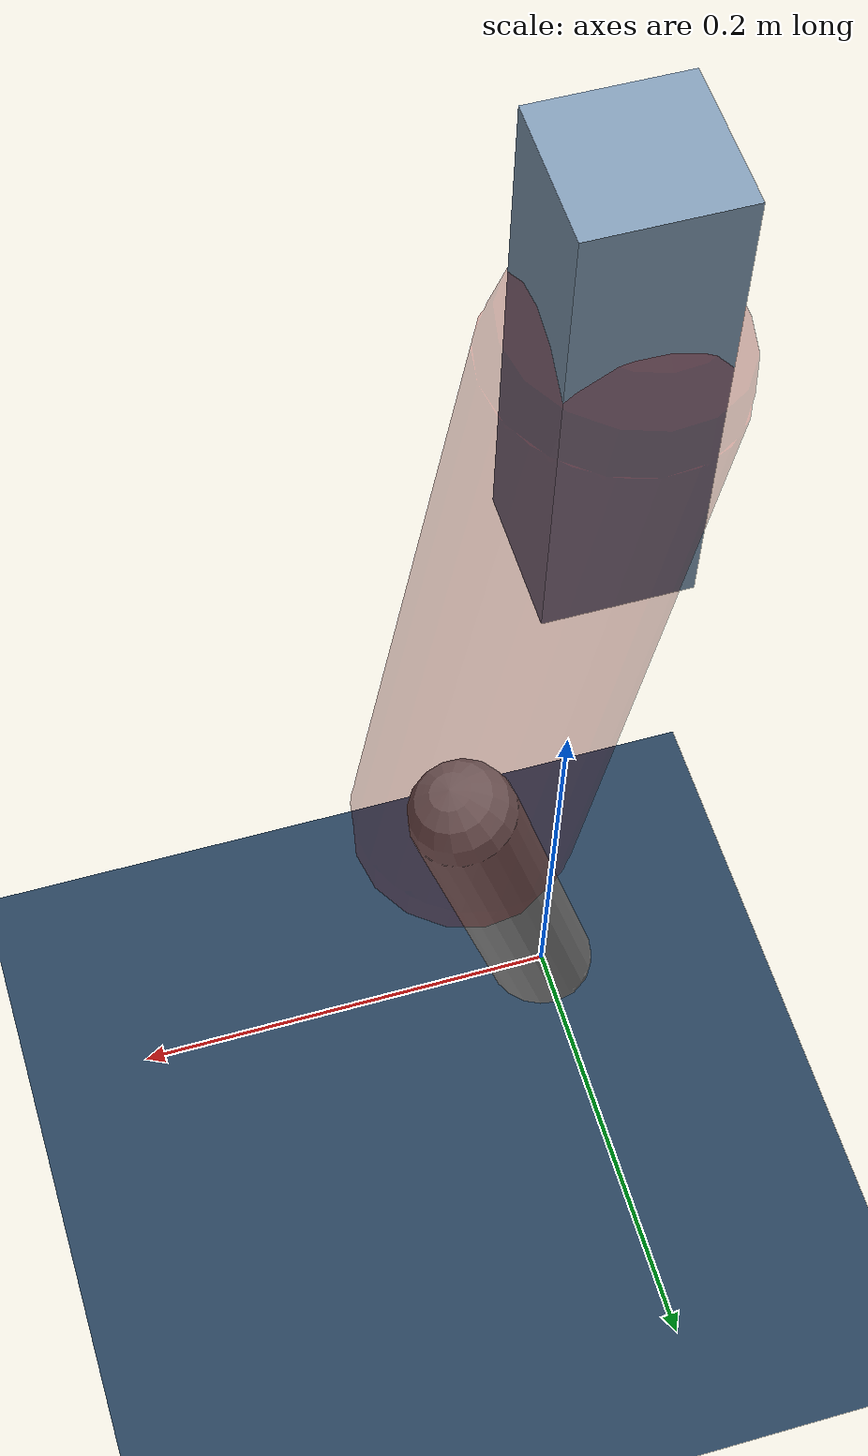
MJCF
<mujoco model="Hopper2D">
	<compiler inertiafromgeom="true" angle="radian" />
	<option timestep="0.001" integrator="implicit" cone="elliptic" solver="Newton" tolerance="1e-10" />

	<default>
		<geom contype="1" conaffinity="1" condim="3" friction="2 0.005 0.0001" solref="0.005 1" />
		<joint limited="true" damping="0.1" />
	</default>

	<asset>
		<texture name="skybox" type="skybox" builtin="gradient" rgb1=".4 .6 .8" rgb2="0 0 0" width="800" height="800" />
		<texture name="grid" type="2d" builtin="checker" rgb1=".1 .2 .3" rgb2=".2 .3 .4" width="300" height="300" mark="edge" markrgb=".2 .3 .4" />
		<material name="ground" texture="grid" texrepeat="1 1" texuniform="true" reflectance="0.1" />
		<material name="leg" rgba="0.5 0.6 0.7 1" />
	</asset>

	<worldbody>

		<geom name="floor" type="plane" size="5 5 0.25" material="ground" />

		<light directional="false" diffuse="0.8 0.8 0.8" specular="0.3 0.3 0.3" pos="0 0 2" dir="0 0 -1" />
		<light mode="targetbodycom" target="base" directional="false" diffuse="0.8 0.8 0.8" specular="0.3 0.3 0.3" pos="0 0 2" dir="0 0 -1" />

		<camera name="fixed" pos="0 -2 1" xyaxes="1 0 0 0 0 1" />
		<camera name="tracking" mode="trackcom" pos="0 -3 1" />

		<body name="root" pos="0 0 0.4397023107683048">
			<joint name="slide_x" type="slide" axis="1 0 0" range="-100 100" />
			<joint name="slide_z" type="slide" axis="0 0 1" range="0 10" />

			<body name="base" pos="0 0 0">
				<geom name="torso" type="box" size="0.03 0.03 0.1" mass="1.496" material="leg" />

				<body name="link1" pos="0 0 0" euler="0 1.4103230048229007 0">
					<joint type="hinge" axis="0 -1 0" pos="0 0 0" name="hinge1" limited="true" range="-3.14 3.14" stiffness="0" damping="0.1" />
					<geom name="thigh" type="capsule" fromto="0 0 0 0.28416574266781014 0 0" size="0.05" rgba="0.5 0 0 0.3" mass="0.9462309309363064" />

					<body name="link2" pos="0.28416574266781014 0 0" euler="0 0.4383279599147247 0">
						<joint type="hinge" axis="0 -1 0" pos="0 0 0" name="hinge2" limited="true" range="-3.14 3.14" stiffness="0" damping="0.1" />
						<geom name="shank" type="capsule" fromto="0 0 0 0.16553656810049464 0 0" size="0.025" mass="0.3713829112904452" />

					</body>
				</body>
			</body>
		</body>
	</worldbody>

	<actuator>
		<motor name="torque1" joint="hinge1" ctrlrange="-21.220371819790667 21.220371819790667" ctrllimited="true" gear="1" />
		<motor name="torque2" joint="hinge2" ctrlrange="-38.321083832356805 38.321083832356805" ctrllimited="true" gear="1" />
	</actuator>
</mujoco>
